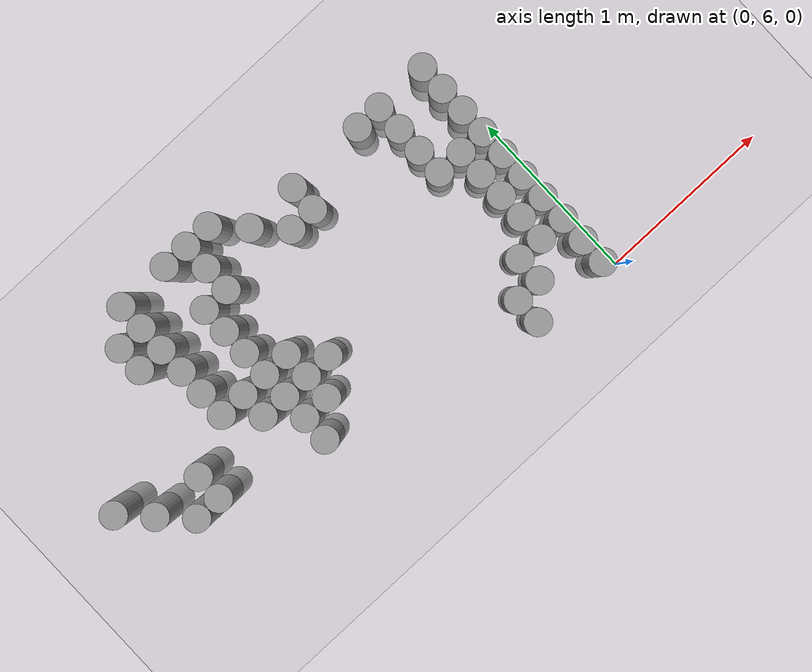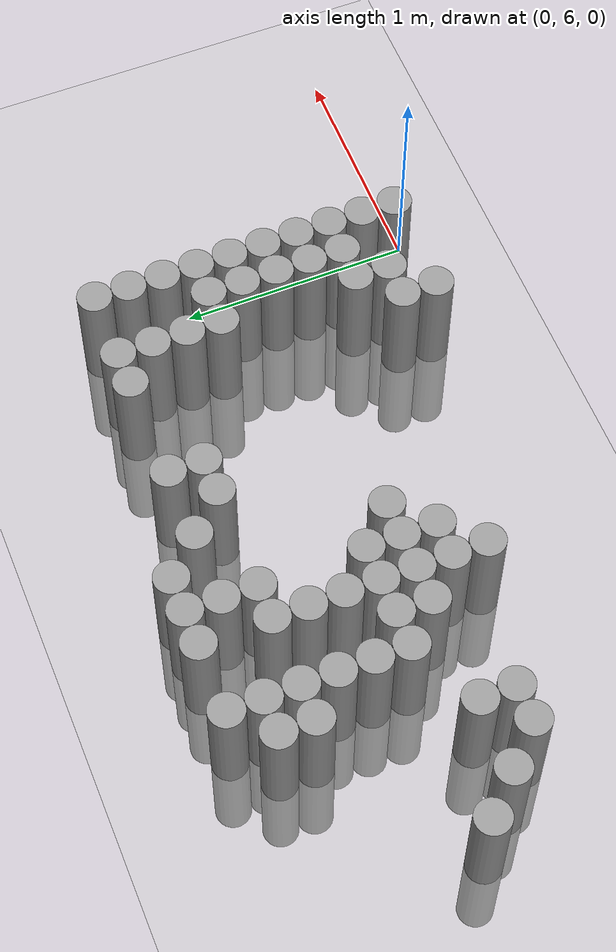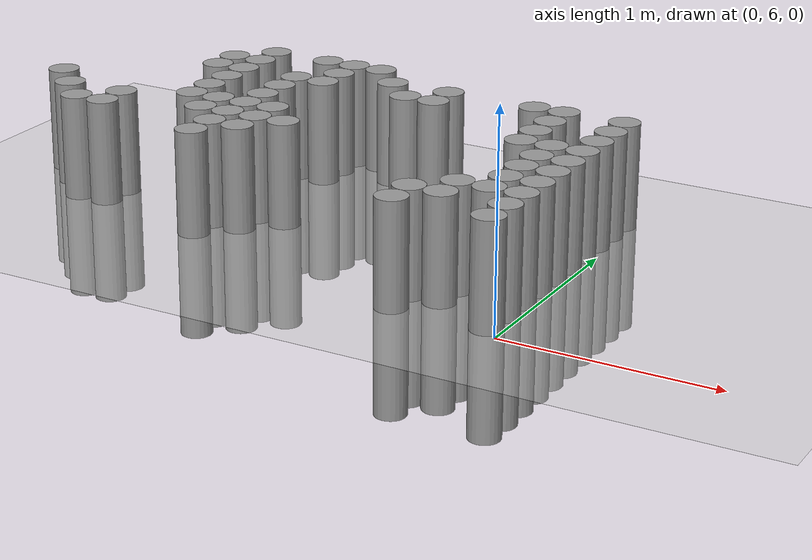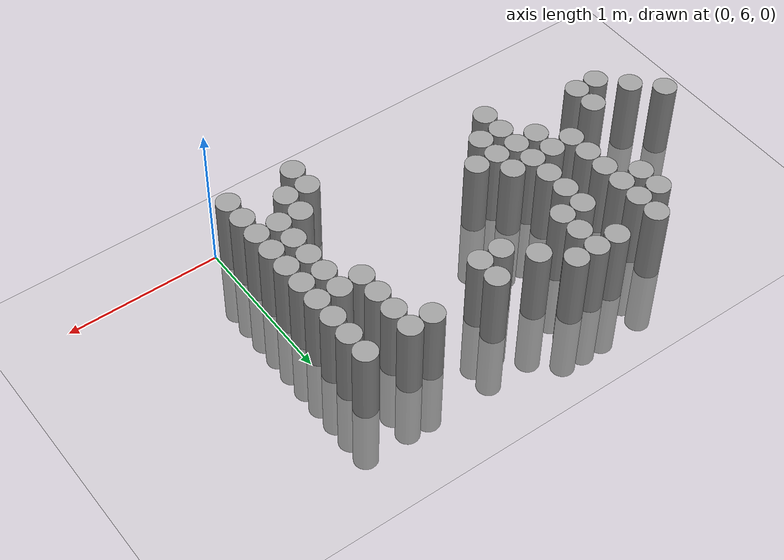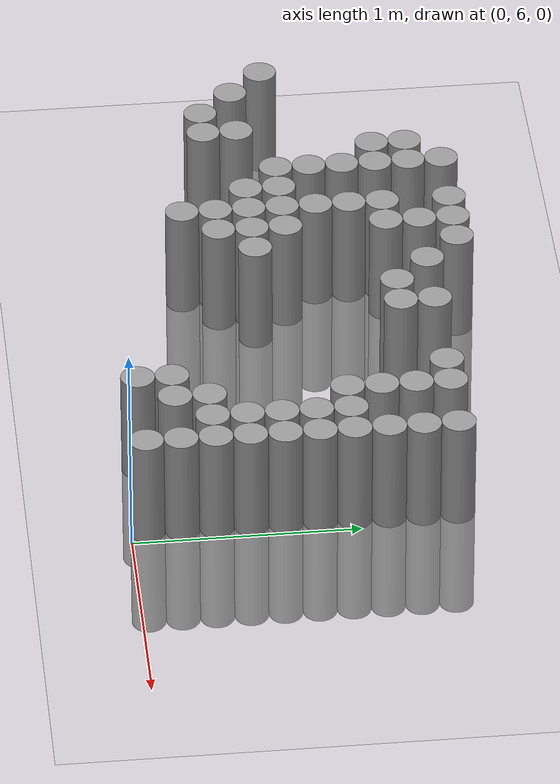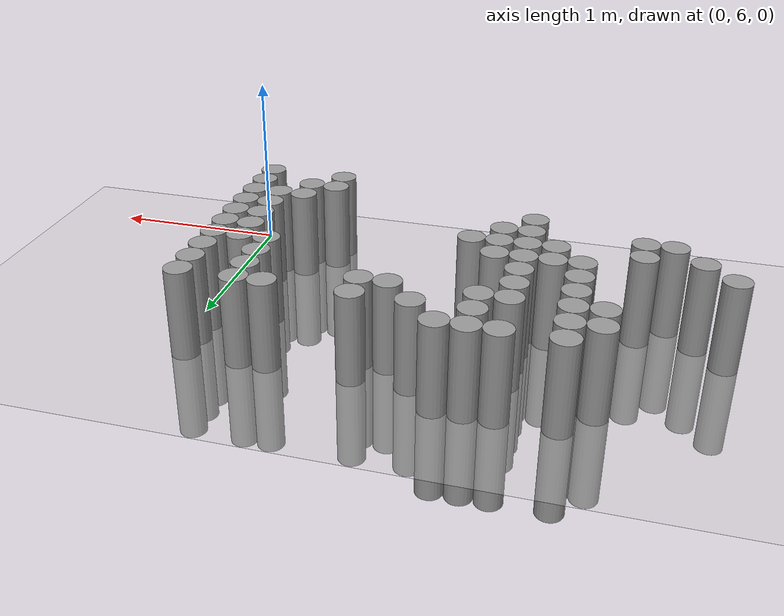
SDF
<sdf version="1.6">
 <world name="default">
  <model name="ground_plane">
   <static>1</static>
   <static>1</static>
   <link name="link">
    <collision name="collision">
     <geometry><plane><normal>0 0 1</normal><size>100 100</size></plane></geometry>
     <surface><friction><ode><mu>100</mu><mu2>50</mu2></ode></friction></surface>
    </collision>
    <visual name="visual">
     <cast_shadows>0</cast_shadows>
     <geometry><plane><normal>0 0 1</normal><size>100 100</size></plane></geometry>
     <material>
      <script><uri>file://media/materials/scripts/gazebo.material</uri><name>Gazebo/Grey</name></script>
     </material>
    </visual>
   </link>
  </model>
  <model name="unit_cylinder_164">
   <static>1</static>
   <pose>-2.775000 6.825000 0.000000 0.000000 0.000000 0.000000</pose>
   <link name="link">
    <inertial>
     <mass>1</mass>
     <inertia><ixx>0.145833</ixx><ixy>0</ixy><ixz>0</ixz><iyy>0.145833</iyy><iyz>0</iyz><izz>0.125</izz></inertia>
    </inertial>
    <collision name="collision">
     <geometry><cylinder><radius>0.075000</radius><length>1</length></cylinder></geometry>
    </collision>
    <visual name="visual">
     <geometry><cylinder><radius>0.075000</radius><length>1</length></cylinder></geometry>
     <material>
      <script><name>Gazebo/Grey</name><uri>file://media/materials/scripts/gazebo.material</uri></script>
     </material>
    </visual>
   </link>
  </model>
  <model name="unit_cylinder_165">
   <static>1</static>
   <pose>-2.625000 6.675000 0.000000 0.000000 0.000000 0.000000</pose>
   <link name="link">
    <inertial>
     <mass>1</mass>
     <inertia><ixx>0.145833</ixx><ixy>0</ixy><ixz>0</ixz><iyy>0.145833</iyy><iyz>0</iyz><izz>0.125</izz></inertia>
    </inertial>
    <collision name="collision">
     <geometry><cylinder><radius>0.075000</radius><length>1</length></cylinder></geometry>
    </collision>
    <visual name="visual">
     <geometry><cylinder><radius>0.075000</radius><length>1</length></cylinder></geometry>
     <material>
      <script><name>Gazebo/Grey</name><uri>file://media/materials/scripts/gazebo.material</uri></script>
     </material>
    </visual>
   </link>
  </model>
  <model name="unit_cylinder_166">
   <static>1</static>
   <pose>-2.475000 6.525000 0.000000 0.000000 0.000000 0.000000</pose>
   <link name="link">
    <inertial>
     <mass>1</mass>
     <inertia><ixx>0.145833</ixx><ixy>0</ixy><ixz>0</ixz><iyy>0.145833</iyy><iyz>0</iyz><izz>0.125</izz></inertia>
    </inertial>
    <collision name="collision">
     <geometry><cylinder><radius>0.075000</radius><length>1</length></cylinder></geometry>
    </collision>
    <visual name="visual">
     <geometry><cylinder><radius>0.075000</radius><length>1</length></cylinder></geometry>
     <material>
      <script><name>Gazebo/Grey</name><uri>file://media/materials/scripts/gazebo.material</uri></script>
     </material>
    </visual>
   </link>
  </model>
  <model name="unit_cylinder_167">
   <static>1</static>
   <pose>-2.325000 6.525000 0.000000 0.000000 0.000000 0.000000</pose>
   <link name="link">
    <inertial>
     <mass>1</mass>
     <inertia><ixx>0.145833</ixx><ixy>0</ixy><ixz>0</ixz><iyy>0.145833</iyy><iyz>0</iyz><izz>0.125</izz></inertia>
    </inertial>
    <collision name="collision">
     <geometry><cylinder><radius>0.075000</radius><length>1</length></cylinder></geometry>
    </collision>
    <visual name="visual">
     <geometry><cylinder><radius>0.075000</radius><length>1</length></cylinder></geometry>
     <material>
      <script><name>Gazebo/Grey</name><uri>file://media/materials/scripts/gazebo.material</uri></script>
     </material>
    </visual>
   </link>
  </model>
  <model name="unit_cylinder_168">
   <static>1</static>
   <pose>-2.325000 6.675000 0.000000 0.000000 0.000000 0.000000</pose>
   <link name="link">
    <inertial>
     <mass>1</mass>
     <inertia><ixx>0.145833</ixx><ixy>0</ixy><ixz>0</ixz><iyy>0.145833</iyy><iyz>0</iyz><izz>0.125</izz></inertia>
    </inertial>
    <collision name="collision">
     <geometry><cylinder><radius>0.075000</radius><length>1</length></cylinder></geometry>
    </collision>
    <visual name="visual">
     <geometry><cylinder><radius>0.075000</radius><length>1</length></cylinder></geometry>
     <material>
      <script><name>Gazebo/Grey</name><uri>file://media/materials/scripts/gazebo.material</uri></script>
     </material>
    </visual>
   </link>
  </model>
  <model name="unit_cylinder_169">
   <static>1</static>
   <pose>-2.175000 7.275000 0.000000 0.000000 0.000000 0.000000</pose>
   <link name="link">
    <inertial>
     <mass>1</mass>
     <inertia><ixx>0.145833</ixx><ixy>0</ixy><ixz>0</ixz><iyy>0.145833</iyy><iyz>0</iyz><izz>0.125</izz></inertia>
    </inertial>
    <collision name="collision">
     <geometry><cylinder><radius>0.075000</radius><length>1</length></cylinder></geometry>
    </collision>
    <visual name="visual">
     <geometry><cylinder><radius>0.075000</radius><length>1</length></cylinder></geometry>
     <material>
      <script><name>Gazebo/Grey</name><uri>file://media/materials/scripts/gazebo.material</uri></script>
     </material>
    </visual>
   </link>
  </model>
  <model name="unit_cylinder_170">
   <static>1</static>
   <pose>-2.175000 7.425000 0.000000 0.000000 0.000000 0.000000</pose>
   <link name="link">
    <inertial>
     <mass>1</mass>
     <inertia><ixx>0.145833</ixx><ixy>0</ixy><ixz>0</ixz><iyy>0.145833</iyy><iyz>0</iyz><izz>0.125</izz></inertia>
    </inertial>
    <collision name="collision">
     <geometry><cylinder><radius>0.075000</radius><length>1</length></cylinder></geometry>
    </collision>
    <visual name="visual">
     <geometry><cylinder><radius>0.075000</radius><length>1</length></cylinder></geometry>
     <material>
      <script><name>Gazebo/Grey</name><uri>file://media/materials/scripts/gazebo.material</uri></script>
     </material>
    </visual>
   </link>
  </model>
  <model name="unit_cylinder_171">
   <static>1</static>
   <pose>-2.025000 6.825000 0.000000 0.000000 0.000000 0.000000</pose>
   <link name="link">
    <inertial>
     <mass>1</mass>
     <inertia><ixx>0.145833</ixx><ixy>0</ixy><ixz>0</ixz><iyy>0.145833</iyy><iyz>0</iyz><izz>0.125</izz></inertia>
    </inertial>
    <collision name="collision">
     <geometry><cylinder><radius>0.075000</radius><length>1</length></cylinder></geometry>
    </collision>
    <visual name="visual">
     <geometry><cylinder><radius>0.075000</radius><length>1</length></cylinder></geometry>
     <material>
      <script><name>Gazebo/Grey</name><uri>file://media/materials/scripts/gazebo.material</uri></script>
     </material>
    </visual>
   </link>
  </model>
  <model name="unit_cylinder_172">
   <static>1</static>
   <pose>-2.025000 6.975000 0.000000 0.000000 0.000000 0.000000</pose>
   <link name="link">
    <inertial>
     <mass>1</mass>
     <inertia><ixx>0.145833</ixx><ixy>0</ixy><ixz>0</ixz><iyy>0.145833</iyy><iyz>0</iyz><izz>0.125</izz></inertia>
    </inertial>
    <collision name="collision">
     <geometry><cylinder><radius>0.075000</radius><length>1</length></cylinder></geometry>
    </collision>
    <visual name="visual">
     <geometry><cylinder><radius>0.075000</radius><length>1</length></cylinder></geometry>
     <material>
      <script><name>Gazebo/Grey</name><uri>file://media/materials/scripts/gazebo.material</uri></script>
     </material>
    </visual>
   </link>
  </model>
  <model name="unit_cylinder_173">
   <static>1</static>
   <pose>-2.025000 7.125000 0.000000 0.000000 0.000000 0.000000</pose>
   <link name="link">
    <inertial>
     <mass>1</mass>
     <inertia><ixx>0.145833</ixx><ixy>0</ixy><ixz>0</ixz><iyy>0.145833</iyy><iyz>0</iyz><izz>0.125</izz></inertia>
    </inertial>
    <collision name="collision">
     <geometry><cylinder><radius>0.075000</radius><length>1</length></cylinder></geometry>
    </collision>
    <visual name="visual">
     <geometry><cylinder><radius>0.075000</radius><length>1</length></cylinder></geometry>
     <material>
      <script><name>Gazebo/Grey</name><uri>file://media/materials/scripts/gazebo.material</uri></script>
     </material>
    </visual>
   </link>
  </model>
  <model name="unit_cylinder_174">
   <static>1</static>
   <pose>-2.025000 7.275000 0.000000 0.000000 0.000000 0.000000</pose>
   <link name="link">
    <inertial>
     <mass>1</mass>
     <inertia><ixx>0.145833</ixx><ixy>0</ixy><ixz>0</ixz><iyy>0.145833</iyy><iyz>0</iyz><izz>0.125</izz></inertia>
    </inertial>
    <collision name="collision">
     <geometry><cylinder><radius>0.075000</radius><length>1</length></cylinder></geometry>
    </collision>
    <visual name="visual">
     <geometry><cylinder><radius>0.075000</radius><length>1</length></cylinder></geometry>
     <material>
      <script><name>Gazebo/Grey</name><uri>file://media/materials/scripts/gazebo.material</uri></script>
     </material>
    </visual>
   </link>
  </model>
  <model name="unit_cylinder_175">
   <static>1</static>
   <pose>-2.025000 7.425000 0.000000 0.000000 0.000000 0.000000</pose>
   <link name="link">
    <inertial>
     <mass>1</mass>
     <inertia><ixx>0.145833</ixx><ixy>0</ixy><ixz>0</ixz><iyy>0.145833</iyy><iyz>0</iyz><izz>0.125</izz></inertia>
    </inertial>
    <collision name="collision">
     <geometry><cylinder><radius>0.075000</radius><length>1</length></cylinder></geometry>
    </collision>
    <visual name="visual">
     <geometry><cylinder><radius>0.075000</radius><length>1</length></cylinder></geometry>
     <material>
      <script><name>Gazebo/Grey</name><uri>file://media/materials/scripts/gazebo.material</uri></script>
     </material>
    </visual>
   </link>
  </model>
  <model name="unit_cylinder_176">
   <static>1</static>
   <pose>-2.025000 7.575000 0.000000 0.000000 0.000000 0.000000</pose>
   <link name="link">
    <inertial>
     <mass>1</mass>
     <inertia><ixx>0.145833</ixx><ixy>0</ixy><ixz>0</ixz><iyy>0.145833</iyy><iyz>0</iyz><izz>0.125</izz></inertia>
    </inertial>
    <collision name="collision">
     <geometry><cylinder><radius>0.075000</radius><length>1</length></cylinder></geometry>
    </collision>
    <visual name="visual">
     <geometry><cylinder><radius>0.075000</radius><length>1</length></cylinder></geometry>
     <material>
      <script><name>Gazebo/Grey</name><uri>file://media/materials/scripts/gazebo.material</uri></script>
     </material>
    </visual>
   </link>
  </model>
  <model name="unit_cylinder_181">
   <static>1</static>
   <pose>-1.875000 6.675000 0.000000 0.000000 0.000000 0.000000</pose>
   <link name="link">
    <inertial>
     <mass>1</mass>
     <inertia><ixx>0.145833</ixx><ixy>0</ixy><ixz>0</ixz><iyy>0.145833</iyy><iyz>0</iyz><izz>0.125</izz></inertia>
    </inertial>
    <collision name="collision">
     <geometry><cylinder><radius>0.075000</radius><length>1</length></cylinder></geometry>
    </collision>
    <visual name="visual">
     <geometry><cylinder><radius>0.075000</radius><length>1</length></cylinder></geometry>
     <material>
      <script><name>Gazebo/Grey</name><uri>file://media/materials/scripts/gazebo.material</uri></script>
     </material>
    </visual>
   </link>
  </model>
  <model name="unit_cylinder_182">
   <static>1</static>
   <pose>-1.875000 6.825000 0.000000 0.000000 0.000000 0.000000</pose>
   <link name="link">
    <inertial>
     <mass>1</mass>
     <inertia><ixx>0.145833</ixx><ixy>0</ixy><ixz>0</ixz><iyy>0.145833</iyy><iyz>0</iyz><izz>0.125</izz></inertia>
    </inertial>
    <collision name="collision">
     <geometry><cylinder><radius>0.075000</radius><length>1</length></cylinder></geometry>
    </collision>
    <visual name="visual">
     <geometry><cylinder><radius>0.075000</radius><length>1</length></cylinder></geometry>
     <material>
      <script><name>Gazebo/Grey</name><uri>file://media/materials/scripts/gazebo.material</uri></script>
     </material>
    </visual>
   </link>
  </model>
  <model name="unit_cylinder_187">
   <static>1</static>
   <pose>-1.725000 6.375000 0.000000 0.000000 0.000000 0.000000</pose>
   <link name="link">
    <inertial>
     <mass>1</mass>
     <inertia><ixx>0.145833</ixx><ixy>0</ixy><ixz>0</ixz><iyy>0.145833</iyy><iyz>0</iyz><izz>0.125</izz></inertia>
    </inertial>
    <collision name="collision">
     <geometry><cylinder><radius>0.075000</radius><length>1</length></cylinder></geometry>
    </collision>
    <visual name="visual">
     <geometry><cylinder><radius>0.075000</radius><length>1</length></cylinder></geometry>
     <material>
      <script><name>Gazebo/Grey</name><uri>file://media/materials/scripts/gazebo.material</uri></script>
     </material>
    </visual>
   </link>
  </model>
  <model name="unit_cylinder_188">
   <static>1</static>
   <pose>-1.725000 6.525000 0.000000 0.000000 0.000000 0.000000</pose>
   <link name="link">
    <inertial>
     <mass>1</mass>
     <inertia><ixx>0.145833</ixx><ixy>0</ixy><ixz>0</ixz><iyy>0.145833</iyy><iyz>0</iyz><izz>0.125</izz></inertia>
    </inertial>
    <collision name="collision">
     <geometry><cylinder><radius>0.075000</radius><length>1</length></cylinder></geometry>
    </collision>
    <visual name="visual">
     <geometry><cylinder><radius>0.075000</radius><length>1</length></cylinder></geometry>
     <material>
      <script><name>Gazebo/Grey</name><uri>file://media/materials/scripts/gazebo.material</uri></script>
     </material>
    </visual>
   </link>
  </model>
  <model name="unit_cylinder_189">
   <static>1</static>
   <pose>-1.725000 6.675000 0.000000 0.000000 0.000000 0.000000</pose>
   <link name="link">
    <inertial>
     <mass>1</mass>
     <inertia><ixx>0.145833</ixx><ixy>0</ixy><ixz>0</ixz><iyy>0.145833</iyy><iyz>0</iyz><izz>0.125</izz></inertia>
    </inertial>
    <collision name="collision">
     <geometry><cylinder><radius>0.075000</radius><length>1</length></cylinder></geometry>
    </collision>
    <visual name="visual">
     <geometry><cylinder><radius>0.075000</radius><length>1</length></cylinder></geometry>
     <material>
      <script><name>Gazebo/Grey</name><uri>file://media/materials/scripts/gazebo.material</uri></script>
     </material>
    </visual>
   </link>
  </model>
  <model name="unit_cylinder_190">
   <static>1</static>
   <pose>-1.725000 6.825000 0.000000 0.000000 0.000000 0.000000</pose>
   <link name="link">
    <inertial>
     <mass>1</mass>
     <inertia><ixx>0.145833</ixx><ixy>0</ixy><ixz>0</ixz><iyy>0.145833</iyy><iyz>0</iyz><izz>0.125</izz></inertia>
    </inertial>
    <collision name="collision">
     <geometry><cylinder><radius>0.075000</radius><length>1</length></cylinder></geometry>
    </collision>
    <visual name="visual">
     <geometry><cylinder><radius>0.075000</radius><length>1</length></cylinder></geometry>
     <material>
      <script><name>Gazebo/Grey</name><uri>file://media/materials/scripts/gazebo.material</uri></script>
     </material>
    </visual>
   </link>
  </model>
  <model name="unit_cylinder_191">
   <static>1</static>
   <pose>-1.725000 6.975000 0.000000 0.000000 0.000000 0.000000</pose>
   <link name="link">
    <inertial>
     <mass>1</mass>
     <inertia><ixx>0.145833</ixx><ixy>0</ixy><ixz>0</ixz><iyy>0.145833</iyy><iyz>0</iyz><izz>0.125</izz></inertia>
    </inertial>
    <collision name="collision">
     <geometry><cylinder><radius>0.075000</radius><length>1</length></cylinder></geometry>
    </collision>
    <visual name="visual">
     <geometry><cylinder><radius>0.075000</radius><length>1</length></cylinder></geometry>
     <material>
      <script><name>Gazebo/Grey</name><uri>file://media/materials/scripts/gazebo.material</uri></script>
     </material>
    </visual>
   </link>
  </model>
  <model name="unit_cylinder_192">
   <static>1</static>
   <pose>-1.725000 7.125000 0.000000 0.000000 0.000000 0.000000</pose>
   <link name="link">
    <inertial>
     <mass>1</mass>
     <inertia><ixx>0.145833</ixx><ixy>0</ixy><ixz>0</ixz><iyy>0.145833</iyy><iyz>0</iyz><izz>0.125</izz></inertia>
    </inertial>
    <collision name="collision">
     <geometry><cylinder><radius>0.075000</radius><length>1</length></cylinder></geometry>
    </collision>
    <visual name="visual">
     <geometry><cylinder><radius>0.075000</radius><length>1</length></cylinder></geometry>
     <material>
      <script><name>Gazebo/Grey</name><uri>file://media/materials/scripts/gazebo.material</uri></script>
     </material>
    </visual>
   </link>
  </model>
  <model name="unit_cylinder_193">
   <static>1</static>
   <pose>-1.725000 7.275000 0.000000 0.000000 0.000000 0.000000</pose>
   <link name="link">
    <inertial>
     <mass>1</mass>
     <inertia><ixx>0.145833</ixx><ixy>0</ixy><ixz>0</ixz><iyy>0.145833</iyy><iyz>0</iyz><izz>0.125</izz></inertia>
    </inertial>
    <collision name="collision">
     <geometry><cylinder><radius>0.075000</radius><length>1</length></cylinder></geometry>
    </collision>
    <visual name="visual">
     <geometry><cylinder><radius>0.075000</radius><length>1</length></cylinder></geometry>
     <material>
      <script><name>Gazebo/Grey</name><uri>file://media/materials/scripts/gazebo.material</uri></script>
     </material>
    </visual>
   </link>
  </model>
  <model name="unit_cylinder_194">
   <static>1</static>
   <pose>-1.725000 7.575000 0.000000 0.000000 0.000000 0.000000</pose>
   <link name="link">
    <inertial>
     <mass>1</mass>
     <inertia><ixx>0.145833</ixx><ixy>0</ixy><ixz>0</ixz><iyy>0.145833</iyy><iyz>0</iyz><izz>0.125</izz></inertia>
    </inertial>
    <collision name="collision">
     <geometry><cylinder><radius>0.075000</radius><length>1</length></cylinder></geometry>
    </collision>
    <visual name="visual">
     <geometry><cylinder><radius>0.075000</radius><length>1</length></cylinder></geometry>
     <material>
      <script><name>Gazebo/Grey</name><uri>file://media/materials/scripts/gazebo.material</uri></script>
     </material>
    </visual>
   </link>
  </model>
  <model name="unit_cylinder_198">
   <static>1</static>
   <pose>-1.575000 6.525000 0.000000 0.000000 0.000000 0.000000</pose>
   <link name="link">
    <inertial>
     <mass>1</mass>
     <inertia><ixx>0.145833</ixx><ixy>0</ixy><ixz>0</ixz><iyy>0.145833</iyy><iyz>0</iyz><izz>0.125</izz></inertia>
    </inertial>
    <collision name="collision">
     <geometry><cylinder><radius>0.075000</radius><length>1</length></cylinder></geometry>
    </collision>
    <visual name="visual">
     <geometry><cylinder><radius>0.075000</radius><length>1</length></cylinder></geometry>
     <material>
      <script><name>Gazebo/Grey</name><uri>file://media/materials/scripts/gazebo.material</uri></script>
     </material>
    </visual>
   </link>
  </model>
  <model name="unit_cylinder_199">
   <static>1</static>
   <pose>-1.575000 6.675000 0.000000 0.000000 0.000000 0.000000</pose>
   <link name="link">
    <inertial>
     <mass>1</mass>
     <inertia><ixx>0.145833</ixx><ixy>0</ixy><ixz>0</ixz><iyy>0.145833</iyy><iyz>0</iyz><izz>0.125</izz></inertia>
    </inertial>
    <collision name="collision">
     <geometry><cylinder><radius>0.075000</radius><length>1</length></cylinder></geometry>
    </collision>
    <visual name="visual">
     <geometry><cylinder><radius>0.075000</radius><length>1</length></cylinder></geometry>
     <material>
      <script><name>Gazebo/Grey</name><uri>file://media/materials/scripts/gazebo.material</uri></script>
     </material>
    </visual>
   </link>
  </model>
  <model name="unit_cylinder_200">
   <static>1</static>
   <pose>-1.575000 6.825000 0.000000 0.000000 0.000000 0.000000</pose>
   <link name="link">
    <inertial>
     <mass>1</mass>
     <inertia><ixx>0.145833</ixx><ixy>0</ixy><ixz>0</ixz><iyy>0.145833</iyy><iyz>0</iyz><izz>0.125</izz></inertia>
    </inertial>
    <collision name="collision">
     <geometry><cylinder><radius>0.075000</radius><length>1</length></cylinder></geometry>
    </collision>
    <visual name="visual">
     <geometry><cylinder><radius>0.075000</radius><length>1</length></cylinder></geometry>
     <material>
      <script><name>Gazebo/Grey</name><uri>file://media/materials/scripts/gazebo.material</uri></script>
     </material>
    </visual>
   </link>
  </model>
  <model name="unit_cylinder_201">
   <static>1</static>
   <pose>-1.575000 7.275000 0.000000 0.000000 0.000000 0.000000</pose>
   <link name="link">
    <inertial>
     <mass>1</mass>
     <inertia><ixx>0.145833</ixx><ixy>0</ixy><ixz>0</ixz><iyy>0.145833</iyy><iyz>0</iyz><izz>0.125</izz></inertia>
    </inertial>
    <collision name="collision">
     <geometry><cylinder><radius>0.075000</radius><length>1</length></cylinder></geometry>
    </collision>
    <visual name="visual">
     <geometry><cylinder><radius>0.075000</radius><length>1</length></cylinder></geometry>
     <material>
      <script><name>Gazebo/Grey</name><uri>file://media/materials/scripts/gazebo.material</uri></script>
     </material>
    </visual>
   </link>
  </model>
  <model name="unit_cylinder_202">
   <static>1</static>
   <pose>-1.575000 7.425000 0.000000 0.000000 0.000000 0.000000</pose>
   <link name="link">
    <inertial>
     <mass>1</mass>
     <inertia><ixx>0.145833</ixx><ixy>0</ixy><ixz>0</ixz><iyy>0.145833</iyy><iyz>0</iyz><izz>0.125</izz></inertia>
    </inertial>
    <collision name="collision">
     <geometry><cylinder><radius>0.075000</radius><length>1</length></cylinder></geometry>
    </collision>
    <visual name="visual">
     <geometry><cylinder><radius>0.075000</radius><length>1</length></cylinder></geometry>
     <material>
      <script><name>Gazebo/Grey</name><uri>file://media/materials/scripts/gazebo.material</uri></script>
     </material>
    </visual>
   </link>
  </model>
  <model name="unit_cylinder_203">
   <static>1</static>
   <pose>-1.575000 7.575000 0.000000 0.000000 0.000000 0.000000</pose>
   <link name="link">
    <inertial>
     <mass>1</mass>
     <inertia><ixx>0.145833</ixx><ixy>0</ixy><ixz>0</ixz><iyy>0.145833</iyy><iyz>0</iyz><izz>0.125</izz></inertia>
    </inertial>
    <collision name="collision">
     <geometry><cylinder><radius>0.075000</radius><length>1</length></cylinder></geometry>
    </collision>
    <visual name="visual">
     <geometry><cylinder><radius>0.075000</radius><length>1</length></cylinder></geometry>
     <material>
      <script><name>Gazebo/Grey</name><uri>file://media/materials/scripts/gazebo.material</uri></script>
     </material>
    </visual>
   </link>
  </model>
  <model name="unit_cylinder_206">
   <static>1</static>
   <pose>-1.425000 6.675000 0.000000 0.000000 0.000000 0.000000</pose>
   <link name="link">
    <inertial>
     <mass>1</mass>
     <inertia><ixx>0.145833</ixx><ixy>0</ixy><ixz>0</ixz><iyy>0.145833</iyy><iyz>0</iyz><izz>0.125</izz></inertia>
    </inertial>
    <collision name="collision">
     <geometry><cylinder><radius>0.075000</radius><length>1</length></cylinder></geometry>
    </collision>
    <visual name="visual">
     <geometry><cylinder><radius>0.075000</radius><length>1</length></cylinder></geometry>
     <material>
      <script><name>Gazebo/Grey</name><uri>file://media/materials/scripts/gazebo.material</uri></script>
     </material>
    </visual>
   </link>
  </model>
  <model name="unit_cylinder_207">
   <static>1</static>
   <pose>-1.425000 7.575000 0.000000 0.000000 0.000000 0.000000</pose>
   <link name="link">
    <inertial>
     <mass>1</mass>
     <inertia><ixx>0.145833</ixx><ixy>0</ixy><ixz>0</ixz><iyy>0.145833</iyy><iyz>0</iyz><izz>0.125</izz></inertia>
    </inertial>
    <collision name="collision">
     <geometry><cylinder><radius>0.075000</radius><length>1</length></cylinder></geometry>
    </collision>
    <visual name="visual">
     <geometry><cylinder><radius>0.075000</radius><length>1</length></cylinder></geometry>
     <material>
      <script><name>Gazebo/Grey</name><uri>file://media/materials/scripts/gazebo.material</uri></script>
     </material>
    </visual>
   </link>
  </model>
  <model name="unit_cylinder_210">
   <static>1</static>
   <pose>-1.275000 7.425000 0.000000 0.000000 0.000000 0.000000</pose>
   <link name="link">
    <inertial>
     <mass>1</mass>
     <inertia><ixx>0.145833</ixx><ixy>0</ixy><ixz>0</ixz><iyy>0.145833</iyy><iyz>0</iyz><izz>0.125</izz></inertia>
    </inertial>
    <collision name="collision">
     <geometry><cylinder><radius>0.075000</radius><length>1</length></cylinder></geometry>
    </collision>
    <visual name="visual">
     <geometry><cylinder><radius>0.075000</radius><length>1</length></cylinder></geometry>
     <material>
      <script><name>Gazebo/Grey</name><uri>file://media/materials/scripts/gazebo.material</uri></script>
     </material>
    </visual>
   </link>
  </model>
  <model name="unit_cylinder_213">
   <static>1</static>
   <pose>-1.125000 7.275000 0.000000 0.000000 0.000000 0.000000</pose>
   <link name="link">
    <inertial>
     <mass>1</mass>
     <inertia><ixx>0.145833</ixx><ixy>0</ixy><ixz>0</ixz><iyy>0.145833</iyy><iyz>0</iyz><izz>0.125</izz></inertia>
    </inertial>
    <collision name="collision">
     <geometry><cylinder><radius>0.075000</radius><length>1</length></cylinder></geometry>
    </collision>
    <visual name="visual">
     <geometry><cylinder><radius>0.075000</radius><length>1</length></cylinder></geometry>
     <material>
      <script><name>Gazebo/Grey</name><uri>file://media/materials/scripts/gazebo.material</uri></script>
     </material>
    </visual>
   </link>
  </model>
  <model name="unit_cylinder_215">
   <static>1</static>
   <pose>-0.975000 7.275000 0.000000 0.000000 0.000000 0.000000</pose>
   <link name="link">
    <inertial>
     <mass>1</mass>
     <inertia><ixx>0.145833</ixx><ixy>0</ixy><ixz>0</ixz><iyy>0.145833</iyy><iyz>0</iyz><izz>0.125</izz></inertia>
    </inertial>
    <collision name="collision">
     <geometry><cylinder><radius>0.075000</radius><length>1</length></cylinder></geometry>
    </collision>
    <visual name="visual">
     <geometry><cylinder><radius>0.075000</radius><length>1</length></cylinder></geometry>
     <material>
      <script><name>Gazebo/Grey</name><uri>file://media/materials/scripts/gazebo.material</uri></script>
     </material>
    </visual>
   </link>
  </model>
  <model name="unit_cylinder_216">
   <static>1</static>
   <pose>-0.975000 7.425000 0.000000 0.000000 0.000000 0.000000</pose>
   <link name="link">
    <inertial>
     <mass>1</mass>
     <inertia><ixx>0.145833</ixx><ixy>0</ixy><ixz>0</ixz><iyy>0.145833</iyy><iyz>0</iyz><izz>0.125</izz></inertia>
    </inertial>
    <collision name="collision">
     <geometry><cylinder><radius>0.075000</radius><length>1</length></cylinder></geometry>
    </collision>
    <visual name="visual">
     <geometry><cylinder><radius>0.075000</radius><length>1</length></cylinder></geometry>
     <material>
      <script><name>Gazebo/Grey</name><uri>file://media/materials/scripts/gazebo.material</uri></script>
     </material>
    </visual>
   </link>
  </model>
  <model name="unit_cylinder_224">
   <static>1</static>
   <pose>-0.525000 6.075000 0.000000 0.000000 0.000000 0.000000</pose>
   <link name="link">
    <inertial>
     <mass>1</mass>
     <inertia><ixx>0.145833</ixx><ixy>0</ixy><ixz>0</ixz><iyy>0.145833</iyy><iyz>0</iyz><izz>0.125</izz></inertia>
    </inertial>
    <collision name="collision">
     <geometry><cylinder><radius>0.075000</radius><length>1</length></cylinder></geometry>
    </collision>
    <visual name="visual">
     <geometry><cylinder><radius>0.075000</radius><length>1</length></cylinder></geometry>
     <material>
      <script><name>Gazebo/Grey</name><uri>file://media/materials/scripts/gazebo.material</uri></script>
     </material>
    </visual>
   </link>
  </model>
  <model name="unit_cylinder_225">
   <static>1</static>
   <pose>-0.525000 6.225000 0.000000 0.000000 0.000000 0.000000</pose>
   <link name="link">
    <inertial>
     <mass>1</mass>
     <inertia><ixx>0.145833</ixx><ixy>0</ixy><ixz>0</ixz><iyy>0.145833</iyy><iyz>0</iyz><izz>0.125</izz></inertia>
    </inertial>
    <collision name="collision">
     <geometry><cylinder><radius>0.075000</radius><length>1</length></cylinder></geometry>
    </collision>
    <visual name="visual">
     <geometry><cylinder><radius>0.075000</radius><length>1</length></cylinder></geometry>
     <material>
      <script><name>Gazebo/Grey</name><uri>file://media/materials/scripts/gazebo.material</uri></script>
     </material>
    </visual>
   </link>
  </model>
  <model name="unit_cylinder_226">
   <static>1</static>
   <pose>-0.525000 7.425000 0.000000 0.000000 0.000000 0.000000</pose>
   <link name="link">
    <inertial>
     <mass>1</mass>
     <inertia><ixx>0.145833</ixx><ixy>0</ixy><ixz>0</ixz><iyy>0.145833</iyy><iyz>0</iyz><izz>0.125</izz></inertia>
    </inertial>
    <collision name="collision">
     <geometry><cylinder><radius>0.075000</radius><length>1</length></cylinder></geometry>
    </collision>
    <visual name="visual">
     <geometry><cylinder><radius>0.075000</radius><length>1</length></cylinder></geometry>
     <material>
      <script><name>Gazebo/Grey</name><uri>file://media/materials/scripts/gazebo.material</uri></script>
     </material>
    </visual>
   </link>
  </model>
  <model name="unit_cylinder_234">
   <static>1</static>
   <pose>-0.375000 6.225000 0.000000 0.000000 0.000000 0.000000</pose>
   <link name="link">
    <inertial>
     <mass>1</mass>
     <inertia><ixx>0.145833</ixx><ixy>0</ixy><ixz>0</ixz><iyy>0.145833</iyy><iyz>0</iyz><izz>0.125</izz></inertia>
    </inertial>
    <collision name="collision">
     <geometry><cylinder><radius>0.075000</radius><length>1</length></cylinder></geometry>
    </collision>
    <visual name="visual">
     <geometry><cylinder><radius>0.075000</radius><length>1</length></cylinder></geometry>
     <material>
      <script><name>Gazebo/Grey</name><uri>file://media/materials/scripts/gazebo.material</uri></script>
     </material>
    </visual>
   </link>
  </model>
  <model name="unit_cylinder_235">
   <static>1</static>
   <pose>-0.375000 6.375000 0.000000 0.000000 0.000000 0.000000</pose>
   <link name="link">
    <inertial>
     <mass>1</mass>
     <inertia><ixx>0.145833</ixx><ixy>0</ixy><ixz>0</ixz><iyy>0.145833</iyy><iyz>0</iyz><izz>0.125</izz></inertia>
    </inertial>
    <collision name="collision">
     <geometry><cylinder><radius>0.075000</radius><length>1</length></cylinder></geometry>
    </collision>
    <visual name="visual">
     <geometry><cylinder><radius>0.075000</radius><length>1</length></cylinder></geometry>
     <material>
      <script><name>Gazebo/Grey</name><uri>file://media/materials/scripts/gazebo.material</uri></script>
     </material>
    </visual>
   </link>
  </model>
  <model name="unit_cylinder_236">
   <static>1</static>
   <pose>-0.375000 6.975000 0.000000 0.000000 0.000000 0.000000</pose>
   <link name="link">
    <inertial>
     <mass>1</mass>
     <inertia><ixx>0.145833</ixx><ixy>0</ixy><ixz>0</ixz><iyy>0.145833</iyy><iyz>0</iyz><izz>0.125</izz></inertia>
    </inertial>
    <collision name="collision">
     <geometry><cylinder><radius>0.075000</radius><length>1</length></cylinder></geometry>
    </collision>
    <visual name="visual">
     <geometry><cylinder><radius>0.075000</radius><length>1</length></cylinder></geometry>
     <material>
      <script><name>Gazebo/Grey</name><uri>file://media/materials/scripts/gazebo.material</uri></script>
     </material>
    </visual>
   </link>
  </model>
  <model name="unit_cylinder_237">
   <static>1</static>
   <pose>-0.375000 7.125000 0.000000 0.000000 0.000000 0.000000</pose>
   <link name="link">
    <inertial>
     <mass>1</mass>
     <inertia><ixx>0.145833</ixx><ixy>0</ixy><ixz>0</ixz><iyy>0.145833</iyy><iyz>0</iyz><izz>0.125</izz></inertia>
    </inertial>
    <collision name="collision">
     <geometry><cylinder><radius>0.075000</radius><length>1</length></cylinder></geometry>
    </collision>
    <visual name="visual">
     <geometry><cylinder><radius>0.075000</radius><length>1</length></cylinder></geometry>
     <material>
      <script><name>Gazebo/Grey</name><uri>file://media/materials/scripts/gazebo.material</uri></script>
     </material>
    </visual>
   </link>
  </model>
  <model name="unit_cylinder_238">
   <static>1</static>
   <pose>-0.375000 7.275000 0.000000 0.000000 0.000000 0.000000</pose>
   <link name="link">
    <inertial>
     <mass>1</mass>
     <inertia><ixx>0.145833</ixx><ixy>0</ixy><ixz>0</ixz><iyy>0.145833</iyy><iyz>0</iyz><izz>0.125</izz></inertia>
    </inertial>
    <collision name="collision">
     <geometry><cylinder><radius>0.075000</radius><length>1</length></cylinder></geometry>
    </collision>
    <visual name="visual">
     <geometry><cylinder><radius>0.075000</radius><length>1</length></cylinder></geometry>
     <material>
      <script><name>Gazebo/Grey</name><uri>file://media/materials/scripts/gazebo.material</uri></script>
     </material>
    </visual>
   </link>
  </model>
  <model name="unit_cylinder_239">
   <static>1</static>
   <pose>-0.375000 7.425000 0.000000 0.000000 0.000000 0.000000</pose>
   <link name="link">
    <inertial>
     <mass>1</mass>
     <inertia><ixx>0.145833</ixx><ixy>0</ixy><ixz>0</ixz><iyy>0.145833</iyy><iyz>0</iyz><izz>0.125</izz></inertia>
    </inertial>
    <collision name="collision">
     <geometry><cylinder><radius>0.075000</radius><length>1</length></cylinder></geometry>
    </collision>
    <visual name="visual">
     <geometry><cylinder><radius>0.075000</radius><length>1</length></cylinder></geometry>
     <material>
      <script><name>Gazebo/Grey</name><uri>file://media/materials/scripts/gazebo.material</uri></script>
     </material>
    </visual>
   </link>
  </model>
  <model name="unit_cylinder_252">
   <static>1</static>
   <pose>-0.225000 6.375000 0.000000 0.000000 0.000000 0.000000</pose>
   <link name="link">
    <inertial>
     <mass>1</mass>
     <inertia><ixx>0.145833</ixx><ixy>0</ixy><ixz>0</ixz><iyy>0.145833</iyy><iyz>0</iyz><izz>0.125</izz></inertia>
    </inertial>
    <collision name="collision">
     <geometry><cylinder><radius>0.075000</radius><length>1</length></cylinder></geometry>
    </collision>
    <visual name="visual">
     <geometry><cylinder><radius>0.075000</radius><length>1</length></cylinder></geometry>
     <material>
      <script><name>Gazebo/Grey</name><uri>file://media/materials/scripts/gazebo.material</uri></script>
     </material>
    </visual>
   </link>
  </model>
  <model name="unit_cylinder_253">
   <static>1</static>
   <pose>-0.225000 6.525000 0.000000 0.000000 0.000000 0.000000</pose>
   <link name="link">
    <inertial>
     <mass>1</mass>
     <inertia><ixx>0.145833</ixx><ixy>0</ixy><ixz>0</ixz><iyy>0.145833</iyy><iyz>0</iyz><izz>0.125</izz></inertia>
    </inertial>
    <collision name="collision">
     <geometry><cylinder><radius>0.075000</radius><length>1</length></cylinder></geometry>
    </collision>
    <visual name="visual">
     <geometry><cylinder><radius>0.075000</radius><length>1</length></cylinder></geometry>
     <material>
      <script><name>Gazebo/Grey</name><uri>file://media/materials/scripts/gazebo.material</uri></script>
     </material>
    </visual>
   </link>
  </model>
  <model name="unit_cylinder_254">
   <static>1</static>
   <pose>-0.225000 6.675000 0.000000 0.000000 0.000000 0.000000</pose>
   <link name="link">
    <inertial>
     <mass>1</mass>
     <inertia><ixx>0.145833</ixx><ixy>0</ixy><ixz>0</ixz><iyy>0.145833</iyy><iyz>0</iyz><izz>0.125</izz></inertia>
    </inertial>
    <collision name="collision">
     <geometry><cylinder><radius>0.075000</radius><length>1</length></cylinder></geometry>
    </collision>
    <visual name="visual">
     <geometry><cylinder><radius>0.075000</radius><length>1</length></cylinder></geometry>
     <material>
      <script><name>Gazebo/Grey</name><uri>file://media/materials/scripts/gazebo.material</uri></script>
     </material>
    </visual>
   </link>
  </model>
  <model name="unit_cylinder_255">
   <static>1</static>
   <pose>-0.225000 6.825000 0.000000 0.000000 0.000000 0.000000</pose>
   <link name="link">
    <inertial>
     <mass>1</mass>
     <inertia><ixx>0.145833</ixx><ixy>0</ixy><ixz>0</ixz><iyy>0.145833</iyy><iyz>0</iyz><izz>0.125</izz></inertia>
    </inertial>
    <collision name="collision">
     <geometry><cylinder><radius>0.075000</radius><length>1</length></cylinder></geometry>
    </collision>
    <visual name="visual">
     <geometry><cylinder><radius>0.075000</radius><length>1</length></cylinder></geometry>
     <material>
      <script><name>Gazebo/Grey</name><uri>file://media/materials/scripts/gazebo.material</uri></script>
     </material>
    </visual>
   </link>
  </model>
  <model name="unit_cylinder_256">
   <static>1</static>
   <pose>-0.225000 6.975000 0.000000 0.000000 0.000000 0.000000</pose>
   <link name="link">
    <inertial>
     <mass>1</mass>
     <inertia><ixx>0.145833</ixx><ixy>0</ixy><ixz>0</ixz><iyy>0.145833</iyy><iyz>0</iyz><izz>0.125</izz></inertia>
    </inertial>
    <collision name="collision">
     <geometry><cylinder><radius>0.075000</radius><length>1</length></cylinder></geometry>
    </collision>
    <visual name="visual">
     <geometry><cylinder><radius>0.075000</radius><length>1</length></cylinder></geometry>
     <material>
      <script><name>Gazebo/Grey</name><uri>file://media/materials/scripts/gazebo.material</uri></script>
     </material>
    </visual>
   </link>
  </model>
  <model name="unit_cylinder_271">
   <static>1</static>
   <pose>-0.075000 6.075000 0.000000 0.000000 0.000000 0.000000</pose>
   <link name="link">
    <inertial>
     <mass>1</mass>
     <inertia><ixx>0.145833</ixx><ixy>0</ixy><ixz>0</ixz><iyy>0.145833</iyy><iyz>0</iyz><izz>0.125</izz></inertia>
    </inertial>
    <collision name="collision">
     <geometry><cylinder><radius>0.075000</radius><length>1</length></cylinder></geometry>
    </collision>
    <visual name="visual">
     <geometry><cylinder><radius>0.075000</radius><length>1</length></cylinder></geometry>
     <material>
      <script><name>Gazebo/Grey</name><uri>file://media/materials/scripts/gazebo.material</uri></script>
     </material>
    </visual>
   </link>
  </model>
  <model name="unit_cylinder_272">
   <static>1</static>
   <pose>-0.075000 6.225000 0.000000 0.000000 0.000000 0.000000</pose>
   <link name="link">
    <inertial>
     <mass>1</mass>
     <inertia><ixx>0.145833</ixx><ixy>0</ixy><ixz>0</ixz><iyy>0.145833</iyy><iyz>0</iyz><izz>0.125</izz></inertia>
    </inertial>
    <collision name="collision">
     <geometry><cylinder><radius>0.075000</radius><length>1</length></cylinder></geometry>
    </collision>
    <visual name="visual">
     <geometry><cylinder><radius>0.075000</radius><length>1</length></cylinder></geometry>
     <material>
      <script><name>Gazebo/Grey</name><uri>file://media/materials/scripts/gazebo.material</uri></script>
     </material>
    </visual>
   </link>
  </model>
  <model name="unit_cylinder_273">
   <static>1</static>
   <pose>-0.075000 6.375000 0.000000 0.000000 0.000000 0.000000</pose>
   <link name="link">
    <inertial>
     <mass>1</mass>
     <inertia><ixx>0.145833</ixx><ixy>0</ixy><ixz>0</ixz><iyy>0.145833</iyy><iyz>0</iyz><izz>0.125</izz></inertia>
    </inertial>
    <collision name="collision">
     <geometry><cylinder><radius>0.075000</radius><length>1</length></cylinder></geometry>
    </collision>
    <visual name="visual">
     <geometry><cylinder><radius>0.075000</radius><length>1</length></cylinder></geometry>
     <material>
      <script><name>Gazebo/Grey</name><uri>file://media/materials/scripts/gazebo.material</uri></script>
     </material>
    </visual>
   </link>
  </model>
  <model name="unit_cylinder_274">
   <static>1</static>
   <pose>-0.075000 6.525000 0.000000 0.000000 0.000000 0.000000</pose>
   <link name="link">
    <inertial>
     <mass>1</mass>
     <inertia><ixx>0.145833</ixx><ixy>0</ixy><ixz>0</ixz><iyy>0.145833</iyy><iyz>0</iyz><izz>0.125</izz></inertia>
    </inertial>
    <collision name="collision">
     <geometry><cylinder><radius>0.075000</radius><length>1</length></cylinder></geometry>
    </collision>
    <visual name="visual">
     <geometry><cylinder><radius>0.075000</radius><length>1</length></cylinder></geometry>
     <material>
      <script><name>Gazebo/Grey</name><uri>file://media/materials/scripts/gazebo.material</uri></script>
     </material>
    </visual>
   </link>
  </model>
  <model name="unit_cylinder_275">
   <static>1</static>
   <pose>-0.075000 6.675000 0.000000 0.000000 0.000000 0.000000</pose>
   <link name="link">
    <inertial>
     <mass>1</mass>
     <inertia><ixx>0.145833</ixx><ixy>0</ixy><ixz>0</ixz><iyy>0.145833</iyy><iyz>0</iyz><izz>0.125</izz></inertia>
    </inertial>
    <collision name="collision">
     <geometry><cylinder><radius>0.075000</radius><length>1</length></cylinder></geometry>
    </collision>
    <visual name="visual">
     <geometry><cylinder><radius>0.075000</radius><length>1</length></cylinder></geometry>
     <material>
      <script><name>Gazebo/Grey</name><uri>file://media/materials/scripts/gazebo.material</uri></script>
     </material>
    </visual>
   </link>
  </model>
  <model name="unit_cylinder_276">
   <static>1</static>
   <pose>-0.075000 6.825000 0.000000 0.000000 0.000000 0.000000</pose>
   <link name="link">
    <inertial>
     <mass>1</mass>
     <inertia><ixx>0.145833</ixx><ixy>0</ixy><ixz>0</ixz><iyy>0.145833</iyy><iyz>0</iyz><izz>0.125</izz></inertia>
    </inertial>
    <collision name="collision">
     <geometry><cylinder><radius>0.075000</radius><length>1</length></cylinder></geometry>
    </collision>
    <visual name="visual">
     <geometry><cylinder><radius>0.075000</radius><length>1</length></cylinder></geometry>
     <material>
      <script><name>Gazebo/Grey</name><uri>file://media/materials/scripts/gazebo.material</uri></script>
     </material>
    </visual>
   </link>
  </model>
  <model name="unit_cylinder_277">
   <static>1</static>
   <pose>-0.075000 6.975000 0.000000 0.000000 0.000000 0.000000</pose>
   <link name="link">
    <inertial>
     <mass>1</mass>
     <inertia><ixx>0.145833</ixx><ixy>0</ixy><ixz>0</ixz><iyy>0.145833</iyy><iyz>0</iyz><izz>0.125</izz></inertia>
    </inertial>
    <collision name="collision">
     <geometry><cylinder><radius>0.075000</radius><length>1</length></cylinder></geometry>
    </collision>
    <visual name="visual">
     <geometry><cylinder><radius>0.075000</radius><length>1</length></cylinder></geometry>
     <material>
      <script><name>Gazebo/Grey</name><uri>file://media/materials/scripts/gazebo.material</uri></script>
     </material>
    </visual>
   </link>
  </model>
  <model name="unit_cylinder_278">
   <static>1</static>
   <pose>-0.075000 7.125000 0.000000 0.000000 0.000000 0.000000</pose>
   <link name="link">
    <inertial>
     <mass>1</mass>
     <inertia><ixx>0.145833</ixx><ixy>0</ixy><ixz>0</ixz><iyy>0.145833</iyy><iyz>0</iyz><izz>0.125</izz></inertia>
    </inertial>
    <collision name="collision">
     <geometry><cylinder><radius>0.075000</radius><length>1</length></cylinder></geometry>
    </collision>
    <visual name="visual">
     <geometry><cylinder><radius>0.075000</radius><length>1</length></cylinder></geometry>
     <material>
      <script><name>Gazebo/Grey</name><uri>file://media/materials/scripts/gazebo.material</uri></script>
     </material>
    </visual>
   </link>
  </model>
  <model name="unit_cylinder_279">
   <static>1</static>
   <pose>-0.075000 7.275000 0.000000 0.000000 0.000000 0.000000</pose>
   <link name="link">
    <inertial>
     <mass>1</mass>
     <inertia><ixx>0.145833</ixx><ixy>0</ixy><ixz>0</ixz><iyy>0.145833</iyy><iyz>0</iyz><izz>0.125</izz></inertia>
    </inertial>
    <collision name="collision">
     <geometry><cylinder><radius>0.075000</radius><length>1</length></cylinder></geometry>
    </collision>
    <visual name="visual">
     <geometry><cylinder><radius>0.075000</radius><length>1</length></cylinder></geometry>
     <material>
      <script><name>Gazebo/Grey</name><uri>file://media/materials/scripts/gazebo.material</uri></script>
     </material>
    </visual>
   </link>
  </model>
  <model name="unit_cylinder_280">
   <static>1</static>
   <pose>-0.075000 7.425000 0.000000 0.000000 0.000000 0.000000</pose>
   <link name="link">
    <inertial>
     <mass>1</mass>
     <inertia><ixx>0.145833</ixx><ixy>0</ixy><ixz>0</ixz><iyy>0.145833</iyy><iyz>0</iyz><izz>0.125</izz></inertia>
    </inertial>
    <collision name="collision">
     <geometry><cylinder><radius>0.075000</radius><length>1</length></cylinder></geometry>
    </collision>
    <visual name="visual">
     <geometry><cylinder><radius>0.075000</radius><length>1</length></cylinder></geometry>
     <material>
      <script><name>Gazebo/Grey</name><uri>file://media/materials/scripts/gazebo.material</uri></script>
     </material>
    </visual>
   </link>
  </model>
 </world>
</sdf>
